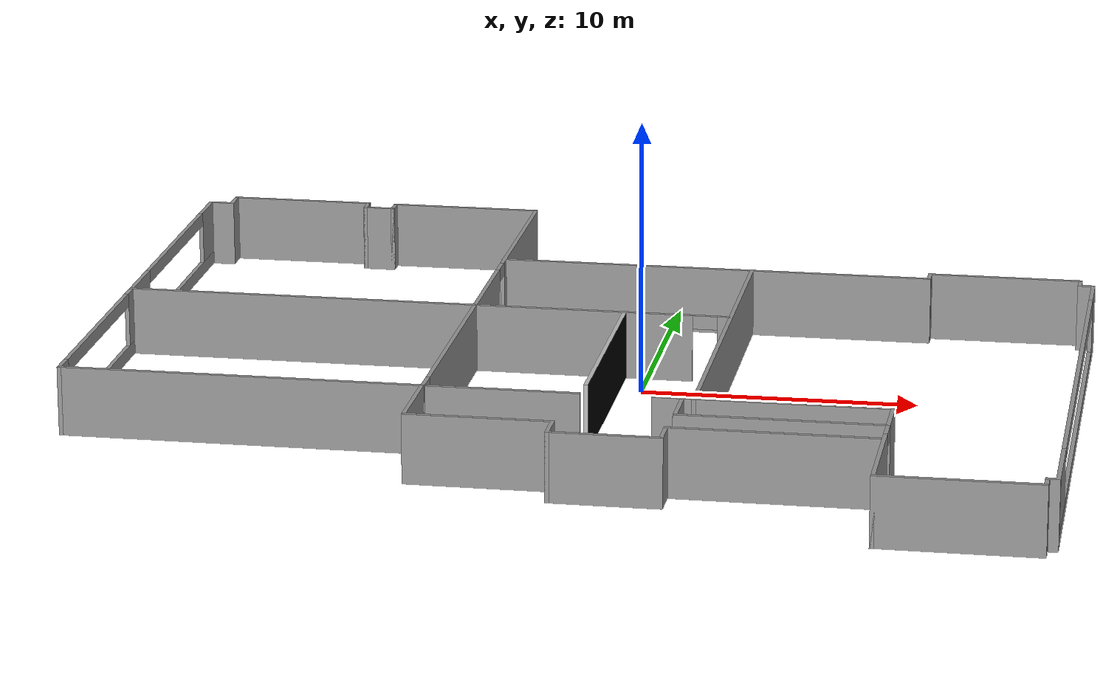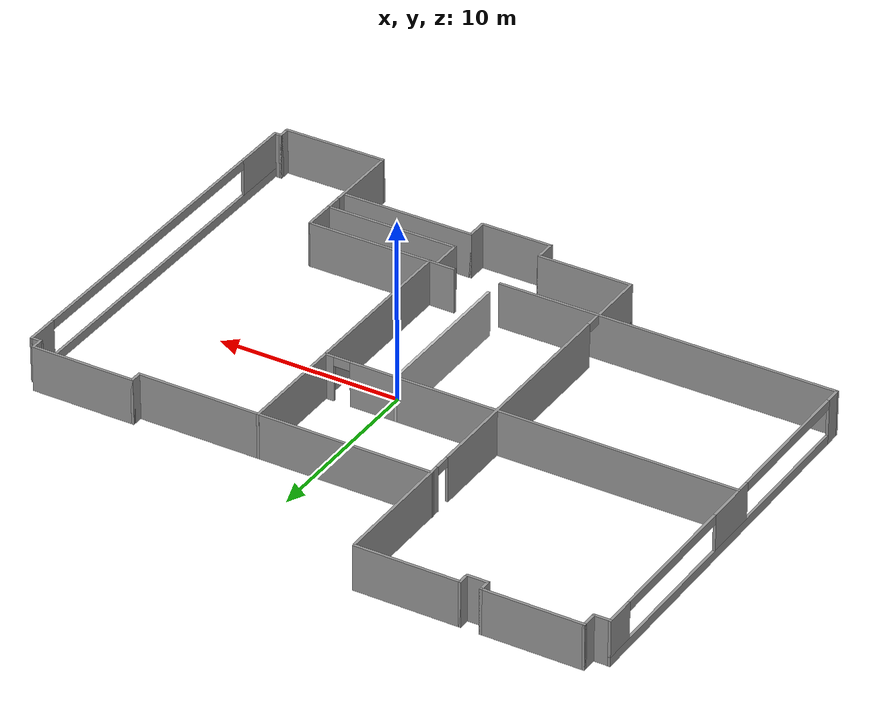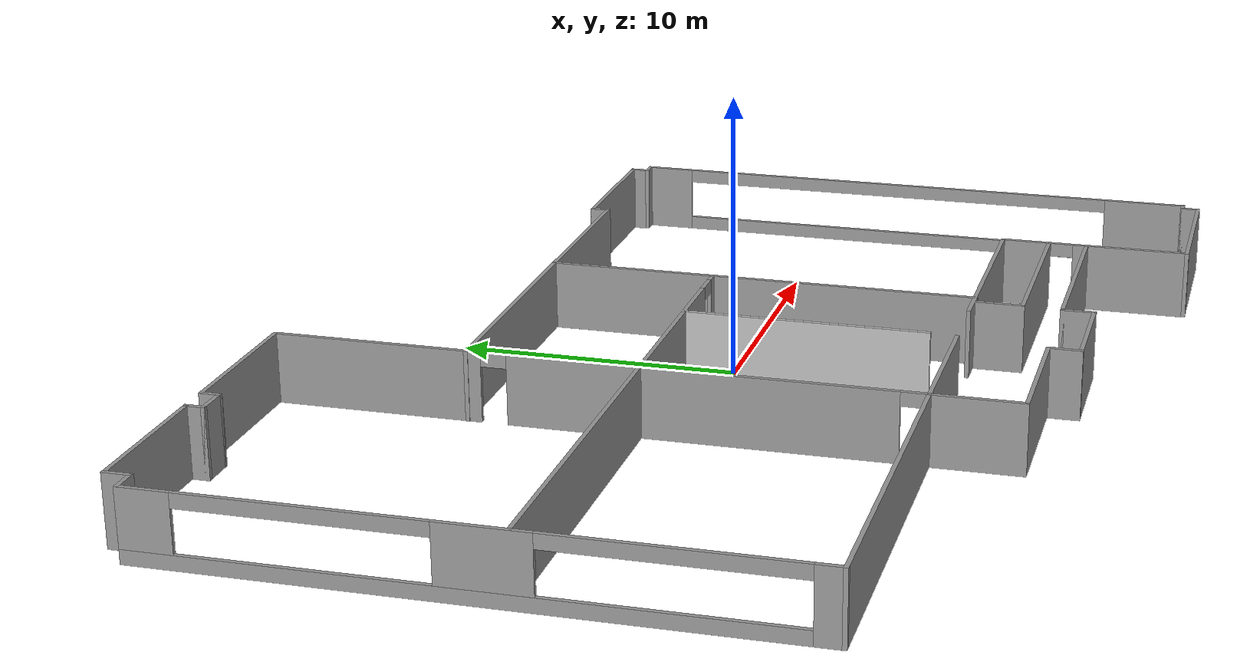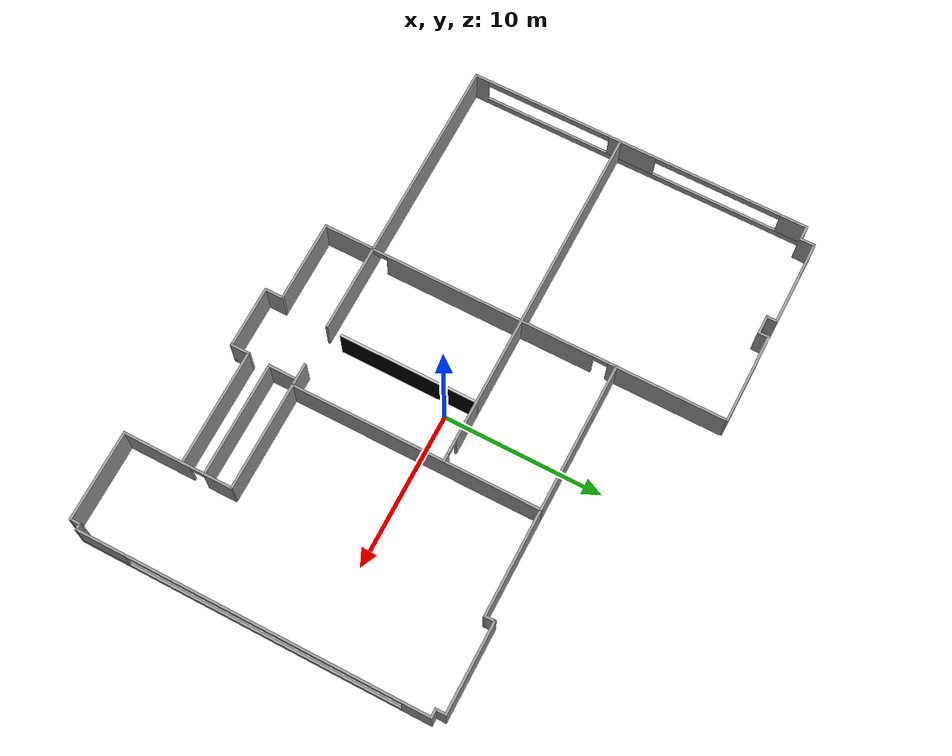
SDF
<?xml version='1.0'?>
<sdf version='1.6'>
  <model name='2nd_floor'>
    <pose frame=''>-1.7675 -0.234448 0 0 -0 0</pose>
    <link name='Wall_14'>
      <collision name='Wall_14_Collision'>
        <geometry>
          <box>
            <size>3.25 0.15 2.5</size>
          </box>
        </geometry>
        <pose frame=''>0 0 1.25 0 -0 0</pose>
      </collision>
      <visual name='Wall_14_Visual'>
        <pose frame=''>0 0 1.25 0 -0 0</pose>
        <geometry>
          <box>
            <size>3.25 0.15 2.5</size>
          </box>
        </geometry>
        <material>
          <script>
            <uri>file://media/materials/scripts/gazebo.material</uri>
            <name>Gazebo/Grey</name>
          </script>
          <ambient>1 1 1 1</ambient>
        </material>
      </visual>
      <pose frame=''>-4.6545 -9.37455 0 0 0 -1.5708</pose>
    </link>
    <link name='Wall_15'>
      <collision name='Wall_15_Collision'>
        <geometry>
          <box>
            <size>5.25 0.15 2.5</size>
          </box>
        </geometry>
        <pose frame=''>0 0 1.25 0 -0 0</pose>
      </collision>
      <visual name='Wall_15_Visual'>
        <pose frame=''>0 0 1.25 0 -0 0</pose>
        <geometry>
          <box>
            <size>5.25 0.15 2.5</size>
          </box>
        </geometry>
        <material>
          <script>
            <uri>file://media/materials/scripts/gazebo.material</uri>
            <name>Gazebo/Grey</name>
          </script>
          <ambient>1 1 1 1</ambient>
        </material>
      </visual>
      <pose frame=''>-2.1045 -10.9246 0 0 -0 0</pose>
    </link>
    <link name='Wall_16'>
      <collision name='Wall_16_Collision'>
        <geometry>
          <box>
            <size>1.25 0.15 2.5</size>
          </box>
        </geometry>
        <pose frame=''>0 0 1.25 0 -0 0</pose>
      </collision>
      <visual name='Wall_16_Visual'>
        <pose frame=''>0 0 1.25 0 -0 0</pose>
        <geometry>
          <box>
            <size>1.25 0.15 2.5</size>
          </box>
        </geometry>
        <material>
          <script>
            <uri>file://media/materials/scripts/gazebo.material</uri>
            <name>Gazebo/Grey</name>
          </script>
          <ambient>1 1 1 1</ambient>
        </material>
      </visual>
      <pose frame=''>0.4455 -11.4746 0 0 0 -1.5708</pose>
    </link>
    <link name='Wall_17'>
      <collision name='Wall_17_Collision'>
        <geometry>
          <box>
            <size>4 0.15 2.5</size>
          </box>
        </geometry>
        <pose frame=''>0 0 1.25 0 -0 0</pose>
      </collision>
      <visual name='Wall_17_Visual'>
        <pose frame=''>0 0 1.25 0 -0 0</pose>
        <geometry>
          <box>
            <size>4 0.15 2.5</size>
          </box>
        </geometry>
        <material>
          <script>
            <uri>file://media/materials/scripts/gazebo.material</uri>
            <name>Gazebo/Grey</name>
          </script>
          <ambient>1 1 1 1</ambient>
        </material>
      </visual>
      <pose frame=''>2.3705 -12.0246 0 0 -0 0</pose>
    </link>
    <link name='Wall_18'>
      <collision name='Wall_18_Collision'>
        <geometry>
          <box>
            <size>1.25 0.15 2.5</size>
          </box>
        </geometry>
        <pose frame=''>0 0 1.25 0 -0 0</pose>
      </collision>
      <visual name='Wall_18_Visual'>
        <pose frame=''>0 0 1.25 0 -0 0</pose>
        <geometry>
          <box>
            <size>1.25 0.15 2.5</size>
          </box>
        </geometry>
        <material>
          <script>
            <uri>file://media/materials/scripts/gazebo.material</uri>
            <name>Gazebo/Grey</name>
          </script>
          <ambient>1 1 1 1</ambient>
        </material>
      </visual>
      <pose frame=''>4.2955 -11.4746 0 0 -0 1.5708</pose>
    </link>
    <link name='Wall_19'>
      <collision name='Wall_19_Collision'>
        <geometry>
          <box>
            <size>7.3 0.15 2.5</size>
          </box>
        </geometry>
        <pose frame=''>0 0 1.25 0 -0 0</pose>
      </collision>
      <visual name='Wall_19_Visual'>
        <pose frame=''>0 0 1.25 0 -0 0</pose>
        <geometry>
          <box>
            <size>7.3 0.15 2.5</size>
          </box>
        </geometry>
        <material>
          <script>
            <uri>file://media/materials/scripts/gazebo.material</uri>
            <name>Gazebo/Grey</name>
          </script>
          <ambient>1 1 1 1</ambient>
        </material>
      </visual>
      <pose frame=''>7.8705 -10.9246 0 0 -0 0</pose>
    </link>
    <link name='Wall_2'>
      <collision name='Wall_2_Collision'>
        <geometry>
          <box>
            <size>18.5 0.15 2.5</size>
          </box>
        </geometry>
        <pose frame=''>0 0 1.25 0 -0 0</pose>
      </collision>
      <visual name='Wall_2_Visual'>
        <pose frame=''>0 0 1.25 0 -0 0</pose>
        <geometry>
          <box>
            <size>18.5 0.15 2.5</size>
          </box>
        </geometry>
        <material>
          <script>
            <uri>file://media/materials/scripts/gazebo.material</uri>
            <name>Gazebo/Grey</name>
          </script>
          <ambient>1 1 1 1</ambient>
        </material>
      </visual>
      <pose frame=''>-8.3795 -7.79855 0 0 -0 0</pose>
    </link>
    <link name='Wall_21'>
      <collision name='Wall_21_Collision'>
        <geometry>
          <box>
            <size>7.19567 0.15 2.5</size>
          </box>
        </geometry>
        <pose frame=''>0 0 1.25 0 -0 0</pose>
      </collision>
      <visual name='Wall_21_Visual'>
        <pose frame=''>0 0 1.25 0 -0 0</pose>
        <geometry>
          <box>
            <size>7.19567 0.15 2.5</size>
          </box>
        </geometry>
        <material>
          <script>
            <uri>file://media/materials/scripts/gazebo.material</uri>
            <name>Gazebo/Grey</name>
          </script>
          <ambient>1 1 1 1</ambient>
        </material>
      </visual>
      <pose frame=''>7.9225 -9.52355 0 0 -0 3.14159</pose>
    </link>
    <link name='Wall_22'>
      <collision name='Wall_22_Collision'>
        <geometry>
          <box>
            <size>1.75 0.15 2.5</size>
          </box>
        </geometry>
        <pose frame=''>0 0 1.25 0 -0 0</pose>
      </collision>
      <visual name='Wall_22_Visual'>
        <pose frame=''>0 0 1.25 0 -0 0</pose>
        <geometry>
          <box>
            <size>1.75 0.15 2.5</size>
          </box>
        </geometry>
        <material>
          <script>
            <uri>file://media/materials/scripts/gazebo.material</uri>
            <name>Gazebo/Grey</name>
          </script>
          <ambient>1 1 1 1</ambient>
        </material>
      </visual>
      <pose frame=''>4.39959 -8.72345 0 0 -0 1.57068</pose>
    </link>
    <link name='Wall_28'>
      <pose frame=''>-4.6245 3.35145 0 0 0 -1.5708</pose>
      <visual name='Wall_28_Visual_0'>
        <pose frame=''>-7.60176 0 1.25 0 -0 0</pose>
        <geometry>
          <box>
            <size>7.33247 0.15 2.5</size>
          </box>
        </geometry>
        <material>
          <script>
            <uri>file://media/materials/scripts/gazebo.material</uri>
            <name>Gazebo/Grey</name>
          </script>
          <ambient>1 1 1 1</ambient>
        </material>
      </visual>
      <collision name='Wall_28_Collision_0'>
        <geometry>
          <box>
            <size>7.33247 0.15 2.5</size>
          </box>
        </geometry>
        <pose frame=''>-7.60176 0 1.25 0 -0 0</pose>
      </collision>
      <visual name='Wall_28_Visual_1'>
        <pose frame=''>3.59301 0 1.25 0 -0 0</pose>
        <geometry>
          <box>
            <size>13.2571 0.15 2.5</size>
          </box>
        </geometry>
        <material>
          <script>
            <uri>file://media/materials/scripts/gazebo.material</uri>
            <name>Gazebo/Grey</name>
          </script>
          <ambient>1 1 1 1</ambient>
        </material>
      </visual>
      <collision name='Wall_28_Collision_1'>
        <geometry>
          <box>
            <size>13.2571 0.15 2.5</size>
          </box>
        </geometry>
        <pose frame=''>3.59301 0 1.25 0 -0 0</pose>
      </collision>
      <visual name='Wall_28_Visual_2'>
        <pose frame=''>11.1948 0 1.25 0 -0 0</pose>
        <geometry>
          <box>
            <size>0.146446 0.15 2.5</size>
          </box>
        </geometry>
        <material>
          <script>
            <uri>file://media/materials/scripts/gazebo.material</uri>
            <name>Gazebo/Grey</name>
          </script>
          <ambient>1 1 1 1</ambient>
        </material>
      </visual>
      <collision name='Wall_28_Collision_2'>
        <geometry>
          <box>
            <size>0.146446 0.15 2.5</size>
          </box>
        </geometry>
        <pose frame=''>11.1948 0 1.25 0 -0 0</pose>
      </collision>
      <visual name='Wall_28_Visual_3'>
        <pose frame=''>-3.48553 0 2.25 0 -0 0</pose>
        <geometry>
          <box>
            <size>0.9 0.15 0.5</size>
          </box>
        </geometry>
        <material>
          <script>
            <uri>file://media/materials/scripts/gazebo.material</uri>
            <name>Gazebo/Grey</name>
          </script>
          <ambient>1 1 1 1</ambient>
        </material>
      </visual>
      <collision name='Wall_28_Collision_3'>
        <geometry>
          <box>
            <size>0.9 0.15 0.5</size>
          </box>
        </geometry>
        <pose frame=''>-3.48553 0 2.25 0 -0 0</pose>
      </collision>
      <visual name='Wall_28_Visual_4'>
        <pose frame=''>10.6716 0 2.25 0 -0 0</pose>
        <geometry>
          <box>
            <size>0.9 0.15 0.5</size>
          </box>
        </geometry>
        <material>
          <script>
            <uri>file://media/materials/scripts/gazebo.material</uri>
            <name>Gazebo/Grey</name>
          </script>
          <ambient>1 1 1 1</ambient>
        </material>
      </visual>
      <collision name='Wall_28_Collision_4'>
        <geometry>
          <box>
            <size>0.9 0.15 0.5</size>
          </box>
        </geometry>
        <pose frame=''>10.6716 0 2.25 0 -0 0</pose>
      </collision>
    </link>
    <link name='Wall_31'>
      <pose frame=''>-6.3795 1.80145 0 0 -0 0</pose>
      <visual name='Wall_31_Visual_0'>
        <pose frame=''>-0.72653 0 1.25 0 -0 0</pose>
        <geometry>
          <box>
            <size>21.0469 0.15 2.5</size>
          </box>
        </geometry>
        <material>
          <script>
            <uri>file://media/materials/scripts/gazebo.material</uri>
            <name>Gazebo/Grey</name>
          </script>
          <ambient>1 1 1 1</ambient>
        </material>
      </visual>
      <collision name='Wall_31_Collision_0'>
        <geometry>
          <box>
            <size>21.0469 0.15 2.5</size>
          </box>
        </geometry>
        <pose frame=''>-0.72653 0 1.25 0 -0 0</pose>
      </collision>
      <visual name='Wall_31_Visual_1'>
        <pose frame=''>10.9735 0 1.25 0 -0 0</pose>
        <geometry>
          <box>
            <size>0.553059 0.15 2.5</size>
          </box>
        </geometry>
        <material>
          <script>
            <uri>file://media/materials/scripts/gazebo.material</uri>
            <name>Gazebo/Grey</name>
          </script>
          <ambient>1 1 1 1</ambient>
        </material>
      </visual>
      <collision name='Wall_31_Collision_1'>
        <geometry>
          <box>
            <size>0.553059 0.15 2.5</size>
          </box>
        </geometry>
        <pose frame=''>10.9735 0 1.25 0 -0 0</pose>
      </collision>
      <visual name='Wall_31_Visual_2'>
        <pose frame=''>10.2469 0 2.25 0 -0 0</pose>
        <geometry>
          <box>
            <size>0.9 0.15 0.5</size>
          </box>
        </geometry>
        <material>
          <script>
            <uri>file://media/materials/scripts/gazebo.material</uri>
            <name>Gazebo/Grey</name>
          </script>
          <ambient>1 1 1 1</ambient>
        </material>
      </visual>
      <collision name='Wall_31_Collision_2'>
        <geometry>
          <box>
            <size>0.9 0.15 0.5</size>
          </box>
        </geometry>
        <pose frame=''>10.2469 0 2.25 0 -0 0</pose>
      </collision>
    </link>
    <link name='Wall_33'>
      <collision name='Wall_33_Collision'>
        <geometry>
          <box>
            <size>8.75 0.15 2.5</size>
          </box>
        </geometry>
        <pose frame=''>0 0 1.25 0 -0 0</pose>
      </collision>
      <visual name='Wall_33_Visual'>
        <pose frame=''>0 0 1.25 0 -0 0</pose>
        <geometry>
          <mesh>
            <uri>model://2nd_floor/meshes/wall_33.dae</uri>
          </mesh>
        </geometry>
      </visual>
      <pose frame=''>0.909288 -2.49727 0 0 0 -1.5708</pose>
    </link>
    <link name='Wall_35'>
      <collision name='Wall_35_Collision'>
        <geometry>
          <box>
            <size>8.25 0.15 2.5</size>
          </box>
        </geometry>
        <pose frame=''>0 0 1.25 0 -0 0</pose>
      </collision>
      <visual name='Wall_35_Visual'>
        <pose frame=''>0 0 1.25 0 -0 0</pose>
        <geometry>
          <box>
            <size>8.25 0.15 2.5</size>
          </box>
        </geometry>
        <material>
          <script>
            <uri>file://media/materials/scripts/gazebo.material</uri>
            <name>Gazebo/Grey</name>
          </script>
          <ambient>1 1 1 1</ambient>
        </material>
      </visual>
      <pose frame=''>7.46969 -7.77811 0 0 -0 0</pose>
    </link>
    <link name='Wall_39'>
      <collision name='Wall_39_Collision'>
        <geometry>
          <box>
            <size>0.75 0.15 2.5</size>
          </box>
        </geometry>
        <pose frame=''>0 0 1.25 0 -0 0</pose>
      </collision>
      <visual name='Wall_39_Visual'>
        <pose frame=''>0 0 1.25 0 -0 0</pose>
        <geometry>
          <box>
            <size>0.75 0.15 2.5</size>
          </box>
        </geometry>
        <material>
          <script>
            <uri>file://media/materials/scripts/gazebo.material</uri>
            <name>Gazebo/Grey</name>
          </script>
          <ambient>1 1 1 1</ambient>
        </material>
      </visual>
      <pose frame=''>11.4584 8.09888 0 0 -0 1.5708</pose>
    </link>
    <link name='Wall_40'>
      <collision name='Wall_40_Collision'>
        <geometry>
          <box>
            <size>5.75 0.15 2.5</size>
          </box>
        </geometry>
        <pose frame=''>0 0 1.25 0 -0 0</pose>
      </collision>
      <visual name='Wall_40_Visual'>
        <pose frame=''>0 0 1.25 0 -0 0</pose>
        <geometry>
          <box>
            <size>5.75 0.15 2.5</size>
          </box>
        </geometry>
        <material>
          <script>
            <uri>file://media/materials/scripts/gazebo.material</uri>
            <name>Gazebo/Grey</name>
          </script>
          <ambient>1 1 1 1</ambient>
        </material>
      </visual>
      <pose frame=''>14.2584 8.39888 0 0 -0 0</pose>
    </link>
    <link name='Wall_41'>
      <collision name='Wall_41_Collision'>
        <geometry>
          <box>
            <size>0.75 0.15 2.5</size>
          </box>
        </geometry>
        <pose frame=''>0 0 1.25 0 -0 0</pose>
      </collision>
      <visual name='Wall_41_Visual'>
        <pose frame=''>0 0 1.25 0 -0 0</pose>
        <geometry>
          <box>
            <size>0.75 0.15 2.5</size>
          </box>
        </geometry>
        <material>
          <script>
            <uri>file://media/materials/scripts/gazebo.material</uri>
            <name>Gazebo/Grey</name>
          </script>
          <ambient>1 1 1 1</ambient>
        </material>
      </visual>
      <pose frame=''>17.0585 8.09867 0 0 0 -1.57066</pose>
    </link>
    <link name='Wall_46'>
      <collision name='Wall_46_Collision'>
        <geometry>
          <box>
            <size>0.645992 0.15 2.5</size>
          </box>
        </geometry>
        <pose frame=''>0 0 1.25 0 -0 0</pose>
      </collision>
      <visual name='Wall_46_Visual'>
        <pose frame=''>0 0 1.25 0 -0 0</pose>
        <geometry>
          <box>
            <size>0.645992 0.15 2.5</size>
          </box>
        </geometry>
        <material>
          <script>
            <uri>file://media/materials/scripts/gazebo.material</uri>
            <name>Gazebo/Grey</name>
          </script>
          <ambient>1 1 1 1</ambient>
        </material>
      </visual>
      <pose frame=''>17.3065 7.79845 0 0 -0 0</pose>
    </link>
    <link name='Wall_48'>
      <pose frame=''>17.5545 -3.12655 0 0 0 -1.5708</pose>
      <visual name='Wall_48_Visual_0'>
        <pose frame=''>-10.0725 0 1.25 0 -0 0</pose>
        <geometry>
          <box>
            <size>1.85498 0.15 2.5</size>
          </box>
        </geometry>
        <material>
          <script>
            <uri>file://media/materials/scripts/gazebo.material</uri>
            <name>Gazebo/Grey</name>
          </script>
          <ambient>1 1 1 1</ambient>
        </material>
      </visual>
      <collision name='Wall_48_Collision_0'>
        <geometry>
          <box>
            <size>1.85498 0.15 2.5</size>
          </box>
        </geometry>
        <pose frame=''>-10.0725 0 1.25 0 -0 0</pose>
      </collision>
      <visual name='Wall_48_Visual_1'>
        <pose frame=''>0.92749 0 0.25 0 -0 0</pose>
        <geometry>
          <box>
            <size>20.145 0.15 0.5</size>
          </box>
        </geometry>
        <material>
          <script>
            <uri>file://media/materials/scripts/gazebo.material</uri>
            <name>Gazebo/Grey</name>
          </script>
          <ambient>1 1 1 1</ambient>
        </material>
      </visual>
      <collision name='Wall_48_Collision_1'>
        <geometry>
          <box>
            <size>20.145 0.15 0.5</size>
          </box>
        </geometry>
        <pose frame=''>0.92749 0 0.25 0 -0 0</pose>
      </collision>
      <visual name='Wall_48_Visual_2'>
        <pose frame=''>9.42749 0 1.5 0 -0 0</pose>
        <geometry>
          <box>
            <size>3.14502 0.15 2</size>
          </box>
        </geometry>
        <material>
          <script>
            <uri>file://media/materials/scripts/gazebo.material</uri>
            <name>Gazebo/Grey</name>
          </script>
          <ambient>1 1 1 1</ambient>
        </material>
      </visual>
      <collision name='Wall_48_Collision_2'>
        <geometry>
          <box>
            <size>3.14502 0.15 2</size>
          </box>
        </geometry>
        <pose frame=''>9.42749 0 1.5 0 -0 0</pose>
      </collision>
      <visual name='Wall_48_Visual_3'>
        <pose frame=''>-0.64502 0 2.25 0 -0 0</pose>
        <geometry>
          <box>
            <size>17 0.15 0.5</size>
          </box>
        </geometry>
        <material>
          <script>
            <uri>file://media/materials/scripts/gazebo.material</uri>
            <name>Gazebo/Grey</name>
          </script>
          <ambient>1 1 1 1</ambient>
        </material>
      </visual>
      <collision name='Wall_48_Collision_3'>
        <geometry>
          <box>
            <size>17 0.15 0.5</size>
          </box>
        </geometry>
        <pose frame=''>-0.64502 0 2.25 0 -0 0</pose>
      </collision>
    </link>
    <link name='Wall_49'>
      <collision name='Wall_49_Collision'>
        <geometry>
          <box>
            <size>0.5 0.15 2.5</size>
          </box>
        </geometry>
        <pose frame=''>0 0 1.25 0 -0 0</pose>
      </collision>
      <visual name='Wall_49_Visual'>
        <pose frame=''>0 0 1.25 0 -0 0</pose>
        <geometry>
          <box>
            <size>0.5 0.15 2.5</size>
          </box>
        </geometry>
        <material>
          <script>
            <uri>file://media/materials/scripts/gazebo.material</uri>
            <name>Gazebo/Grey</name>
          </script>
          <ambient>1 1 1 1</ambient>
        </material>
      </visual>
      <pose frame=''>17.3795 -14.0516 0 0 -0 3.14159</pose>
    </link>
    <link name='Wall_50'>
      <collision name='Wall_50_Collision'>
        <geometry>
          <box>
            <size>0.75 0.15 2.5</size>
          </box>
        </geometry>
        <pose frame=''>0 0 1.25 0 -0 0</pose>
      </collision>
      <visual name='Wall_50_Visual'>
        <pose frame=''>0 0 1.25 0 -0 0</pose>
        <geometry>
          <box>
            <size>0.75 0.15 2.5</size>
          </box>
        </geometry>
        <material>
          <script>
            <uri>file://media/materials/scripts/gazebo.material</uri>
            <name>Gazebo/Grey</name>
          </script>
          <ambient>1 1 1 1</ambient>
        </material>
      </visual>
      <pose frame=''>17.2045 -14.3516 0 0 0 -1.5708</pose>
    </link>
    <link name='Wall_51'>
      <collision name='Wall_51_Collision'>
        <geometry>
          <box>
            <size>5.75 0.15 2.5</size>
          </box>
        </geometry>
        <pose frame=''>0 0 1.25 0 -0 0</pose>
      </collision>
      <visual name='Wall_51_Visual'>
        <pose frame=''>0 0 1.25 0 -0 0</pose>
        <geometry>
          <box>
            <size>5.75 0.15 2.5</size>
          </box>
        </geometry>
        <material>
          <script>
            <uri>file://media/materials/scripts/gazebo.material</uri>
            <name>Gazebo/Grey</name>
          </script>
          <ambient>1 1 1 1</ambient>
        </material>
      </visual>
      <pose frame=''>14.4045 -14.6516 0 0 -0 3.14159</pose>
    </link>
    <link name='Wall_52'>
      <pose frame=''>11.6045 -11.2266 0 0 -0 1.5708</pose>
      <visual name='Wall_52_Visual_0'>
        <pose frame=''>-1.34756 0 1.25 0 -0 0</pose>
        <geometry>
          <box>
            <size>4.30488 0.15 2.5</size>
          </box>
        </geometry>
        <material>
          <script>
            <uri>file://media/materials/scripts/gazebo.material</uri>
            <name>Gazebo/Grey</name>
          </script>
          <ambient>1 1 1 1</ambient>
        </material>
      </visual>
      <collision name='Wall_52_Collision_0'>
        <geometry>
          <box>
            <size>4.30488 0.15 2.5</size>
          </box>
        </geometry>
        <pose frame=''>-1.34756 0 1.25 0 -0 0</pose>
      </collision>
      <visual name='Wall_52_Visual_1'>
        <pose frame=''>2.60244 0 1.25 0 -0 0</pose>
        <geometry>
          <box>
            <size>1.79512 0.15 2.5</size>
          </box>
        </geometry>
        <material>
          <script>
            <uri>file://media/materials/scripts/gazebo.material</uri>
            <name>Gazebo/Grey</name>
          </script>
          <ambient>1 1 1 1</ambient>
        </material>
      </visual>
      <collision name='Wall_52_Collision_1'>
        <geometry>
          <box>
            <size>1.79512 0.15 2.5</size>
          </box>
        </geometry>
        <pose frame=''>2.60244 0 1.25 0 -0 0</pose>
      </collision>
      <visual name='Wall_52_Visual_2'>
        <pose frame=''>1.25488 0 2.25 0 -0 0</pose>
        <geometry>
          <box>
            <size>0.9 0.15 0.5</size>
          </box>
        </geometry>
        <material>
          <script>
            <uri>file://media/materials/scripts/gazebo.material</uri>
            <name>Gazebo/Grey</name>
          </script>
          <ambient>1 1 1 1</ambient>
        </material>
      </visual>
      <collision name='Wall_52_Collision_2'>
        <geometry>
          <box>
            <size>0.9 0.15 0.5</size>
          </box>
        </geometry>
        <pose frame=''>1.25488 0 2.25 0 -0 0</pose>
      </collision>
    </link>
    <link name='Wall_54'>
      <collision name='Wall_54_Collision'>
        <geometry>
          <box>
            <size>15.75 0.15 2.5</size>
          </box>
        </geometry>
        <pose frame=''>0 0 1.25 0 -0 0</pose>
      </collision>
      <visual name='Wall_54_Visual'>
        <pose frame=''>0 0 1.25 0 -0 0</pose>
        <geometry>
          <box>
            <size>15.75 0.15 2.5</size>
          </box>
        </geometry>
        <material>
          <script>
            <uri>file://media/materials/scripts/gazebo.material</uri>
            <name>Gazebo/Grey</name>
          </script>
          <ambient>1 1 1 1</ambient>
        </material>
      </visual>
      <pose frame=''>4.80602 0.004502 0 0 0 -1.5708</pose>
    </link>
    <link name='Wall_57'>
      <collision name='Wall_57_Collision'>
        <geometry>
          <box>
            <size>16.25 0.15 2.5</size>
          </box>
        </geometry>
        <pose frame=''>0 0 1.25 0 -0 0</pose>
      </collision>
      <visual name='Wall_57_Visual'>
        <pose frame=''>0 0 1.25 0 -0 0</pose>
        <geometry>
          <box>
            <size>16.25 0.15 2.5</size>
          </box>
        </geometry>
        <material>
          <script>
            <uri>file://media/materials/scripts/gazebo.material</uri>
            <name>Gazebo/Grey</name>
          </script>
          <ambient>1 1 1 1</ambient>
        </material>
      </visual>
      <pose frame=''>3.40842 7.79888 0 0 -0 3.14159</pose>
    </link>
    <link name='Wall_59'>
      <pose frame=''>-17.5545 3.00145 0 0 -0 1.5708</pose>
      <visual name='Wall_59_Visual_0'>
        <pose frame=''>-10.4003 0 1.25 0 -0 0</pose>
        <geometry>
          <box>
            <size>0.949417 0.15 2.5</size>
          </box>
        </geometry>
        <material>
          <script>
            <uri>file://media/materials/scripts/gazebo.material</uri>
            <name>Gazebo/Grey</name>
          </script>
          <ambient>1 1 1 1</ambient>
        </material>
      </visual>
      <collision name='Wall_59_Collision_0'>
        <geometry>
          <box>
            <size>0.949417 0.15 2.5</size>
          </box>
        </geometry>
        <pose frame=''>-10.4003 0 1.25 0 -0 0</pose>
      </collision>
      <visual name='Wall_59_Visual_1'>
        <pose frame=''>0.474709 0 0.25 0 -0 0</pose>
        <geometry>
          <box>
            <size>20.8006 0.15 0.5</size>
          </box>
        </geometry>
        <material>
          <script>
            <uri>file://media/materials/scripts/gazebo.material</uri>
            <name>Gazebo/Grey</name>
          </script>
          <ambient>1 1 1 1</ambient>
        </material>
      </visual>
      <collision name='Wall_59_Collision_1'>
        <geometry>
          <box>
            <size>20.8006 0.15 0.5</size>
          </box>
        </geometry>
        <pose frame=''>0.474709 0 0.25 0 -0 0</pose>
      </collision>
      <visual name='Wall_59_Visual_2'>
        <pose frame=''>-0.400126 0 1.5 0 -0 0</pose>
        <geometry>
          <box>
            <size>3.05091 0.15 2</size>
          </box>
        </geometry>
        <material>
          <script>
            <uri>file://media/materials/scripts/gazebo.material</uri>
            <name>Gazebo/Grey</name>
          </script>
          <ambient>1 1 1 1</ambient>
        </material>
      </visual>
      <collision name='Wall_59_Collision_2'>
        <geometry>
          <box>
            <size>3.05091 0.15 2</size>
          </box>
        </geometry>
        <pose frame=''>-0.400126 0 1.5 0 -0 0</pose>
      </collision>
      <visual name='Wall_59_Visual_3'>
        <pose frame=''>10.0002 0 1.5 0 -0 0</pose>
        <geometry>
          <box>
            <size>1.74967 0.15 2</size>
          </box>
        </geometry>
        <material>
          <script>
            <uri>file://media/materials/scripts/gazebo.material</uri>
            <name>Gazebo/Grey</name>
          </script>
          <ambient>1 1 1 1</ambient>
        </material>
      </visual>
      <collision name='Wall_59_Collision_3'>
        <geometry>
          <box>
            <size>1.74967 0.15 2</size>
          </box>
        </geometry>
        <pose frame=''>10.0002 0 1.5 0 -0 0</pose>
      </collision>
      <visual name='Wall_59_Visual_4'>
        <pose frame=''>-5.92558 0 2.25 0 -0 0</pose>
        <geometry>
          <box>
            <size>8 0.15 0.5</size>
          </box>
        </geometry>
        <material>
          <script>
            <uri>file://media/materials/scripts/gazebo.material</uri>
            <name>Gazebo/Grey</name>
          </script>
          <ambient>1 1 1 1</ambient>
        </material>
      </visual>
      <collision name='Wall_59_Collision_4'>
        <geometry>
          <box>
            <size>8 0.15 0.5</size>
          </box>
        </geometry>
        <pose frame=''>-5.92558 0 2.25 0 -0 0</pose>
      </collision>
      <visual name='Wall_59_Visual_5'>
        <pose frame=''>5.12533 0 2.25 0 -0 0</pose>
        <geometry>
          <box>
            <size>8 0.15 0.5</size>
          </box>
        </geometry>
        <material>
          <script>
            <uri>file://media/materials/scripts/gazebo.material</uri>
            <name>Gazebo/Grey</name>
          </script>
          <ambient>1 1 1 1</ambient>
        </material>
      </visual>
      <collision name='Wall_59_Collision_5'>
        <geometry>
          <box>
            <size>8 0.15 0.5</size>
          </box>
        </geometry>
        <pose frame=''>5.12533 0 2.25 0 -0 0</pose>
      </collision>
    </link>
    <link name='Wall_60'>
      <collision name='Wall_60_Collision'>
        <geometry>
          <box>
            <size>1 0.15 2.5</size>
          </box>
        </geometry>
        <pose frame=''>0 0 1.25 0 -0 0</pose>
      </collision>
      <visual name='Wall_60_Visual'>
        <pose frame=''>0 0 1.25 0 -0 0</pose>
        <geometry>
          <box>
            <size>1 0.15 2.5</size>
          </box>
        </geometry>
        <material>
          <script>
            <uri>file://media/materials/scripts/gazebo.material</uri>
            <name>Gazebo/Grey</name>
          </script>
          <ambient>1 1 1 1</ambient>
        </material>
      </visual>
      <pose frame=''>-17.1293 13.8015 0 0 -0 0.000122</pose>
    </link>
    <link name='Wall_61'>
      <collision name='Wall_61_Collision'>
        <geometry>
          <box>
            <size>1 0.15 2.5</size>
          </box>
        </geometry>
        <pose frame=''>0 0 1.25 0 -0 0</pose>
      </collision>
      <visual name='Wall_61_Visual'>
        <pose frame=''>0 0 1.25 0 -0 0</pose>
        <geometry>
          <box>
            <size>1 0.15 2.5</size>
          </box>
        </geometry>
        <material>
          <script>
            <uri>file://media/materials/scripts/gazebo.material</uri>
            <name>Gazebo/Grey</name>
          </script>
          <ambient>1 1 1 1</ambient>
        </material>
      </visual>
      <pose frame=''>-16.7042 14.2266 0 0 -0 1.5708</pose>
    </link>
    <link name='Wall_62'>
      <collision name='Wall_62_Collision'>
        <geometry>
          <box>
            <size>5.5 0.15 2.5</size>
          </box>
        </geometry>
        <pose frame=''>0 0 1.25 0 -0 0</pose>
      </collision>
      <visual name='Wall_62_Visual'>
        <pose frame=''>0 0 1.25 0 -0 0</pose>
        <geometry>
          <box>
            <size>5.5 0.15 2.5</size>
          </box>
        </geometry>
        <material>
          <script>
            <uri>file://media/materials/scripts/gazebo.material</uri>
            <name>Gazebo/Grey</name>
          </script>
          <ambient>1 1 1 1</ambient>
        </material>
      </visual>
      <pose frame=''>-14.0292 14.6516 0 0 -0 0</pose>
    </link>
    <link name='Wall_63'>
      <collision name='Wall_63_Collision'>
        <geometry>
          <box>
            <size>0.75 0.15 2.5</size>
          </box>
        </geometry>
        <pose frame=''>0 0 1.25 0 -0 0</pose>
      </collision>
      <visual name='Wall_63_Visual'>
        <pose frame=''>0 0 1.25 0 -0 0</pose>
        <geometry>
          <box>
            <size>0.75 0.15 2.5</size>
          </box>
        </geometry>
        <material>
          <script>
            <uri>file://media/materials/scripts/gazebo.material</uri>
            <name>Gazebo/Grey</name>
          </script>
          <ambient>1 1 1 1</ambient>
        </material>
      </visual>
      <pose frame=''>-11.3542 14.3516 0 0 0 -1.5708</pose>
    </link>
    <link name='Wall_64'>
      <collision name='Wall_64_Collision'>
        <geometry>
          <box>
            <size>1.25 0.15 2.5</size>
          </box>
        </geometry>
        <pose frame=''>0 0 1.25 0 -0 0</pose>
      </collision>
      <visual name='Wall_64_Visual'>
        <pose frame=''>0 0 1.25 0 -0 0</pose>
        <geometry>
          <box>
            <size>1.25 0.15 2.5</size>
          </box>
        </geometry>
        <material>
          <script>
            <uri>file://media/materials/scripts/gazebo.material</uri>
            <name>Gazebo/Grey</name>
          </script>
          <ambient>1 1 1 1</ambient>
        </material>
      </visual>
      <pose frame=''>-10.8042 14.0516 0 0 -0 0</pose>
    </link>
    <link name='Wall_65'>
      <collision name='Wall_65_Collision'>
        <geometry>
          <box>
            <size>0.75 0.15 2.5</size>
          </box>
        </geometry>
        <pose frame=''>0 0 1.25 0 -0 0</pose>
      </collision>
      <visual name='Wall_65_Visual'>
        <pose frame=''>0 0 1.25 0 -0 0</pose>
        <geometry>
          <box>
            <size>0.75 0.15 2.5</size>
          </box>
        </geometry>
        <material>
          <script>
            <uri>file://media/materials/scripts/gazebo.material</uri>
            <name>Gazebo/Grey</name>
          </script>
          <ambient>1 1 1 1</ambient>
        </material>
      </visual>
      <pose frame=''>-10.2542 14.3516 0 0 -0 1.5708</pose>
    </link>
    <link name='Wall_66'>
      <collision name='Wall_66_Collision'>
        <geometry>
          <box>
            <size>5.75 0.15 2.5</size>
          </box>
        </geometry>
        <pose frame=''>0 0 1.25 0 -0 0</pose>
      </collision>
      <visual name='Wall_66_Visual'>
        <pose frame=''>0 0 1.25 0 -0 0</pose>
        <geometry>
          <box>
            <size>5.75 0.15 2.5</size>
          </box>
        </geometry>
        <material>
          <script>
            <uri>file://media/materials/scripts/gazebo.material</uri>
            <name>Gazebo/Grey</name>
          </script>
          <ambient>1 1 1 1</ambient>
        </material>
      </visual>
      <pose frame=''>-7.45416 14.6516 0 0 -0 0</pose>
    </link>
    <static>1</static>
  </model>
</sdf>
